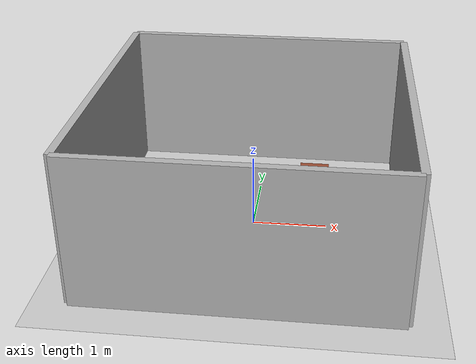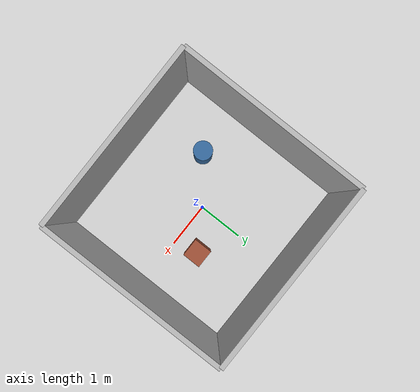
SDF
<?xml version="1.0"?>
<sdf version="1.9">
  <world name="room">
    <physics name="1ms" type="ignored">
      <max_step_size>0.001</max_step_size>
      <real_time_factor>1.0</real_time_factor>
    </physics>
    <plugin filename="gz-sim-physics-system" name="gz::sim::systems::Physics"></plugin>
    <plugin filename="gz-sim-user-commands-system" name="gz::sim::systems::UserCommands"></plugin>
    <plugin filename="gz-sim-scene-broadcaster-system" name="gz::sim::systems::SceneBroadcaster"></plugin>
    <plugin filename="gz-sim-sensors-system" name="gz::sim::systems::Sensors">
      <render_engine>ogre2</render_engine>
    </plugin>

    <light type="directional" name="sun">
      <cast_shadows>true</cast_shadows>
      <pose>0 0 10 0 0 0</pose>
      <diffuse>0.8 0.8 0.8 1</diffuse>
      <specular>0.2 0.2 0.2 1</specular>
      <direction>-0.5 0.1 -0.9</direction>
    </light>

    <model name="ground_plane">
      <static>true</static>
      <link name="link">
        <collision name="collision">
          <geometry>
            <plane>
              <normal>0 0 1</normal>
              <size>100 100</size>
            </plane>
          </geometry>
        </collision>
        <visual name="visual">
          <geometry>
            <plane>
              <normal>0 0 1</normal>
              <size>100 100</size>
            </plane>
          </geometry>
          <material>
            <ambient>0.8 0.8 0.8 1</ambient>
            <diffuse>0.8 0.8 0.8 1</diffuse>
          </material>
        </visual>
      </link>
    </model>

  <gui fullscreen="0">
  <plugin filename="MinimalScene" name="3D View">
    <gz-gui>
      <title>3D View</title>
      <property type="bool" key="showTitleBar">false</property>
      <property type="string" key="state">docked</property>
    </gz-gui>
    <engine>ogre2</engine>
    <scene>scene</scene>
    <ambient_light>0.4 0.4 0.4</ambient_light>
    <background_color>0.8 0.8 0.8</background_color>
    <camera_pose>-6 0 6 0 0.5 0</camera_pose>
  </plugin>
  <plugin filename="GzSceneManager" name="Scene Manager">
    <gz-gui>
      <property key="resizable" type="bool">false</property>
      <property key="width" type="double">5</property>
      <property key="height" type="double">5</property>
      <property key="state" type="string">floating</property>
      <property key="showTitleBar" type="bool">false</property>
    </gz-gui>
  </plugin>
  <plugin filename="InteractiveViewControl" name="Interactive view control">
    <gz-gui>
      <property key="resizable" type="bool">false</property>
      <property key="width" type="double">5</property>
      <property key="height" type="double">5</property>
      <property key="state" type="string">floating</property>
      <property key="showTitleBar" type="bool">false</property>
    </gz-gui>
  </plugin>
</gui>

    <!-- Room: 4m x 4m, walls 2m tall, 0.1m thick -->
    <model name="wall_north">
      <static>true</static>
      <pose>0 2 1 0 0 0</pose>
      <link name="link">
        <collision name="collision">
          <geometry><box><size>4 0.1 2</size></box></geometry>
        </collision>
        <visual name="visual">
          <geometry><box><size>4 0.1 2</size></box></geometry>
          <material><ambient>0.7 0.7 0.7 1</ambient><diffuse>0.7 0.7 0.7 1</diffuse></material>
        </visual>
      </link>
    </model>

    <model name="wall_south">
      <static>true</static>
      <pose>0 -2 1 0 0 0</pose>
      <link name="link">
        <collision name="collision">
          <geometry><box><size>4 0.1 2</size></box></geometry>
        </collision>
        <visual name="visual">
          <geometry><box><size>4 0.1 2</size></box></geometry>
          <material><ambient>0.7 0.7 0.7 1</ambient><diffuse>0.7 0.7 0.7 1</diffuse></material>
        </visual>
      </link>
    </model>

    <model name="wall_east">
      <static>true</static>
      <pose>2 0 1 0 0 1.5708</pose>
      <link name="link">
        <collision name="collision">
          <geometry><box><size>4 0.1 2</size></box></geometry>
        </collision>
        <visual name="visual">
          <geometry><box><size>4 0.1 2</size></box></geometry>
          <material><ambient>0.7 0.7 0.7 1</ambient><diffuse>0.7 0.7 0.7 1</diffuse></material>
        </visual>
      </link>
    </model>

    <model name="wall_west">
      <static>true</static>
      <pose>-2 0 1 0 0 1.5708</pose>
      <link name="link">
        <collision name="collision">
          <geometry><box><size>4 0.1 2</size></box></geometry>
        </collision>
        <visual name="visual">
          <geometry><box><size>4 0.1 2</size></box></geometry>
          <material><ambient>0.7 0.7 0.7 1</ambient><diffuse>0.7 0.7 0.7 1</diffuse></material>
        </visual>
      </link>
    </model>

    <!-- A couple interior obstacles so the map isn't just an empty box -->
    <model name="obstacle_box_1">
      <static>true</static>
      <pose>0.8 0.5 0.3 0 0 0</pose>
      <link name="link">
        <collision name="collision">
          <geometry><box><size>0.4 0.4 0.6</size></box></geometry>
        </collision>
        <visual name="visual">
          <geometry><box><size>0.4 0.4 0.6</size></box></geometry>
          <material><ambient>0.6 0.3 0.2 1</ambient><diffuse>0.6 0.3 0.2 1</diffuse></material>
        </visual>
      </link>
    </model>

    <model name="obstacle_cylinder_1">
      <static>true</static>
      <pose>-0.9 -0.7 0.4 0 0 0</pose>
      <link name="link">
        <collision name="collision">
          <geometry><cylinder><radius>0.2</radius><length>0.8</length></cylinder></geometry>
        </collision>
        <visual name="visual">
          <geometry><cylinder><radius>0.2</radius><length>0.8</length></cylinder></geometry>
          <material><ambient>0.2 0.4 0.6 1</ambient><diffuse>0.2 0.4 0.6 1</diffuse></material>
        </visual>
      </link>
    </model>

  </world>
</sdf>
